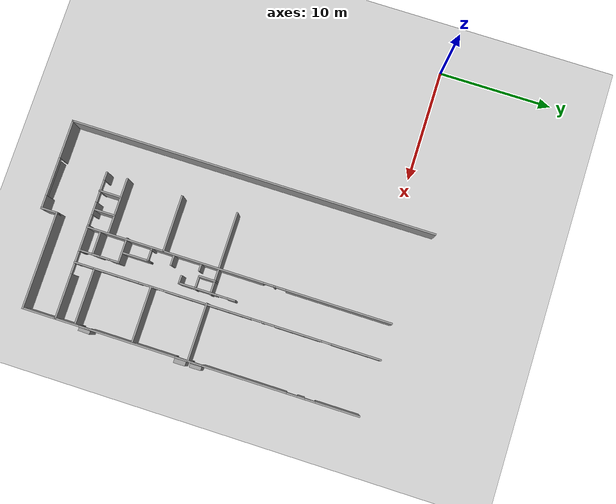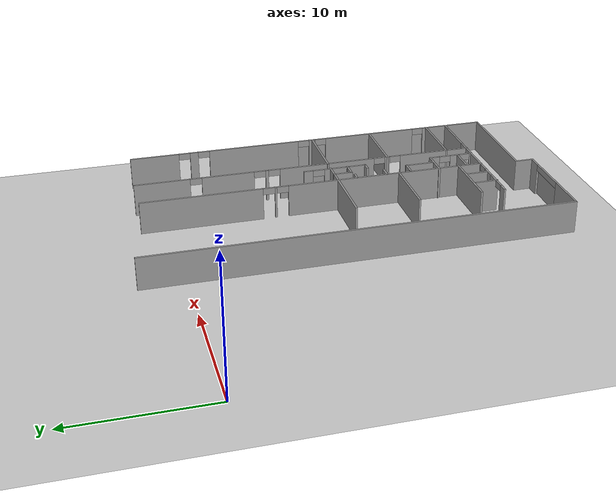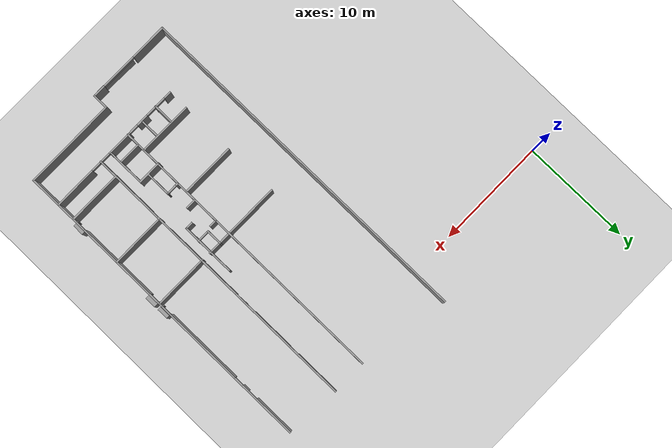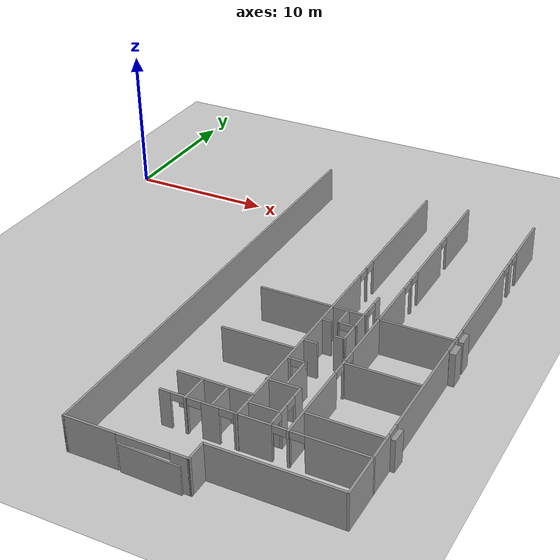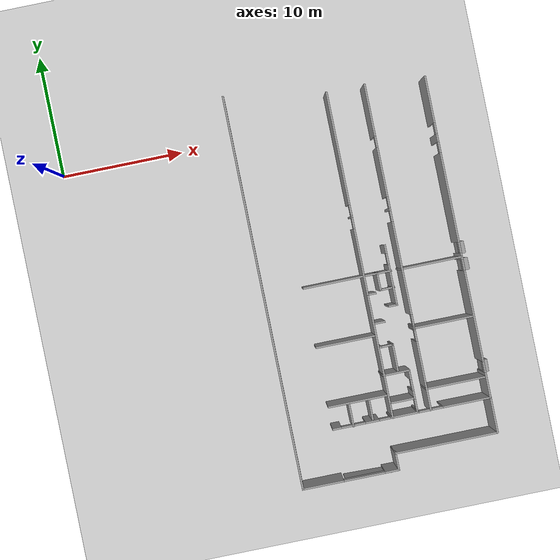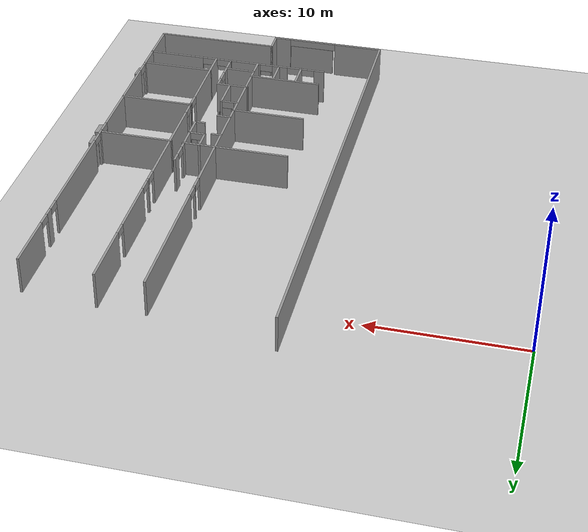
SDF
<sdf version="1.6">
 <world name="default">
  <model name="ground_plane">
   <static>1</static>
   <link name="link">
    <collision name="collision">
     <geometry><plane><normal>0 0 1</normal><size>100 100</size></plane></geometry>
     <surface><friction><ode><mu>100</mu><mu2>50</mu2></ode></friction></surface>
    </collision>
    <visual name="visual">
     <cast_shadows>0</cast_shadows>
     <geometry><plane><normal>0 0 1</normal><size>100 100</size></plane></geometry>
     <material>
      <script><uri>file://media/materials/scripts/gazebo.material</uri><name>Gazebo/Grey</name></script>
     </material>
    </visual>
   </link>
  </model>
  <model name="fin_se1f1.sdf">
   <pose>1.8125 -2.2901 0 0 -0 0</pose>
   <link name="Wall_10">
    <pose>28.6504 -10.5254 0 0 -0 1.5708</pose>
    <visual name="Wall_10_Visual_0">
     <pose>-12.1333 0 1.25 0 -0 0</pose>
     <geometry><box><size>4.98346 0.15 2.5</size></box></geometry>
     <material>
      <script><uri>file://media/materials/scripts/gazebo.material</uri><name>Gazebo/Grey</name></script>
      <ambient>1 1 1 1</ambient>
     </material>
     <meta><layer>0</layer></meta>
    </visual>
    <collision name="Wall_10_Collision_0">
     <geometry><box><size>4.98346 0.15 2.5</size></box></geometry>
     <pose>-12.1333 0 1.25 0 -0 0</pose>
    </collision>
    <visual name="Wall_10_Visual_1">
     <pose>-5.01797 0 1.25 0 -0 0</pose>
     <geometry><box><size>7.44713 0.15 2.5</size></box></geometry>
     <material>
      <script><uri>file://media/materials/scripts/gazebo.material</uri><name>Gazebo/Grey</name></script>
      <ambient>1 1 1 1</ambient>
     </material>
     <meta><layer>0</layer></meta>
    </visual>
    <collision name="Wall_10_Collision_1">
     <geometry><box><size>7.44713 0.15 2.5</size></box></geometry>
     <pose>-5.01797 0 1.25 0 -0 0</pose>
    </collision>
    <visual name="Wall_10_Visual_2">
     <pose>-0.130374 0 1.25 0 -0 0</pose>
     <geometry><box><size>0.528064 0.15 2.5</size></box></geometry>
     <material>
      <script><uri>file://media/materials/scripts/gazebo.material</uri><name>Gazebo/Grey</name></script>
      <ambient>1 1 1 1</ambient>
     </material>
     <meta><layer>0</layer></meta>
    </visual>
    <collision name="Wall_10_Collision_2">
     <geometry><box><size>0.528064 0.15 2.5</size></box></geometry>
     <pose>-0.130374 0 1.25 0 -0 0</pose>
    </collision>
    <visual name="Wall_10_Visual_3">
     <pose>4.68683 0 1.25 0 -0 0</pose>
     <geometry><box><size>7.30634 0.15 2.5</size></box></geometry>
     <material>
      <script><uri>file://media/materials/scripts/gazebo.material</uri><name>Gazebo/Grey</name></script>
      <ambient>1 1 1 1</ambient>
     </material>
     <meta><layer>0</layer></meta>
    </visual>
    <collision name="Wall_10_Collision_3">
     <geometry><box><size>7.30634 0.15 2.5</size></box></geometry>
     <pose>4.68683 0 1.25 0 -0 0</pose>
    </collision>
    <visual name="Wall_10_Visual_4">
     <pose>9.56437 0 1.25 0 -0 0</pose>
     <geometry><box><size>0.648745 0.15 2.5</size></box></geometry>
     <material>
      <script><uri>file://media/materials/scripts/gazebo.material</uri><name>Gazebo/Grey</name></script>
      <ambient>1 1 1 1</ambient>
     </material>
     <meta><layer>0</layer></meta>
    </visual>
    <collision name="Wall_10_Collision_4">
     <geometry><box><size>0.648745 0.15 2.5</size></box></geometry>
     <pose>9.56437 0 1.25 0 -0 0</pose>
    </collision>
    <visual name="Wall_10_Visual_5">
     <pose>12.7069 0 1.25 0 -0 0</pose>
     <geometry><box><size>3.83626 0.15 2.5</size></box></geometry>
     <material>
      <script><uri>file://media/materials/scripts/gazebo.material</uri><name>Gazebo/Grey</name></script>
      <ambient>1 1 1 1</ambient>
     </material>
     <meta><layer>0</layer></meta>
    </visual>
    <collision name="Wall_10_Collision_5">
     <geometry><box><size>3.83626 0.15 2.5</size></box></geometry>
     <pose>12.7069 0 1.25 0 -0 0</pose>
    </collision>
    <visual name="Wall_10_Visual_6">
     <pose>-9.19154 0 2.25 0 -0 0</pose>
     <geometry><box><size>0.9 0.15 0.5</size></box></geometry>
     <material>
      <script><uri>file://media/materials/scripts/gazebo.material</uri><name>Gazebo/Grey</name></script>
      <ambient>1 1 1 1</ambient>
     </material>
     <meta><layer>0</layer></meta>
    </visual>
    <collision name="Wall_10_Collision_6">
     <geometry><box><size>0.9 0.15 0.5</size></box></geometry>
     <pose>-9.19154 0 2.25 0 -0 0</pose>
    </collision>
    <visual name="Wall_10_Visual_7">
     <pose>-0.844406 0 2.25 0 -0 0</pose>
     <geometry><box><size>0.9 0.15 0.5</size></box></geometry>
     <material>
      <script><uri>file://media/materials/scripts/gazebo.material</uri><name>Gazebo/Grey</name></script>
      <ambient>1 1 1 1</ambient>
     </material>
     <meta><layer>0</layer></meta>
    </visual>
    <collision name="Wall_10_Collision_7">
     <geometry><box><size>0.9 0.15 0.5</size></box></geometry>
     <pose>-0.844406 0 2.25 0 -0 0</pose>
    </collision>
    <visual name="Wall_10_Visual_8">
     <pose>0.583658 0 2.25 0 -0 0</pose>
     <geometry><box><size>0.9 0.15 0.5</size></box></geometry>
     <material>
      <script><uri>file://media/materials/scripts/gazebo.material</uri><name>Gazebo/Grey</name></script>
      <ambient>1 1 1 1</ambient>
     </material>
     <meta><layer>0</layer></meta>
    </visual>
    <collision name="Wall_10_Collision_8">
     <geometry><box><size>0.9 0.15 0.5</size></box></geometry>
     <pose>0.583658 0 2.25 0 -0 0</pose>
    </collision>
    <visual name="Wall_10_Visual_9">
     <pose>8.78999 0 2.25 0 -0 0</pose>
     <geometry><box><size>0.9 0.15 0.5</size></box></geometry>
     <material>
      <script><uri>file://media/materials/scripts/gazebo.material</uri><name>Gazebo/Grey</name></script>
      <ambient>1 1 1 1</ambient>
     </material>
     <meta><layer>0</layer></meta>
    </visual>
    <collision name="Wall_10_Collision_9">
     <geometry><box><size>0.9 0.15 0.5</size></box></geometry>
     <pose>8.78999 0 2.25 0 -0 0</pose>
    </collision>
    <visual name="Wall_10_Visual_10">
     <pose>10.3387 0 2.25 0 -0 0</pose>
     <geometry><box><size>0.9 0.15 0.5</size></box></geometry>
     <material>
      <script><uri>file://media/materials/scripts/gazebo.material</uri><name>Gazebo/Grey</name></script>
      <ambient>1 1 1 1</ambient>
     </material>
     <meta><layer>0</layer></meta>
    </visual>
    <collision name="Wall_10_Collision_10">
     <geometry><box><size>0.9 0.15 0.5</size></box></geometry>
     <pose>10.3387 0 2.25 0 -0 0</pose>
    </collision>
   </link>
   <link name="Wall_165">
    <pose>22.2268 -22.214 0 0 -0 0</pose>
    <visual name="Wall_165_Visual_0">
     <pose>-6.13034 0 1.25 0 -0 0</pose>
     <geometry><box><size>0.739323 0.15 2.5</size></box></geometry>
     <material>
      <script><uri>file://media/materials/scripts/gazebo.material</uri><name>Gazebo/Grey</name></script>
      <ambient>1 1 1 1</ambient>
     </material>
     <meta><layer>0</layer></meta>
    </visual>
    <collision name="Wall_165_Collision_0">
     <geometry><box><size>0.739323 0.15 2.5</size></box></geometry>
     <pose>-6.13034 0 1.25 0 -0 0</pose>
    </collision>
    <visual name="Wall_165_Visual_1">
     <pose>-4.77767 0 1.25 0 -0 0</pose>
     <geometry><box><size>0.166019 0.15 2.5</size></box></geometry>
     <material>
      <script><uri>file://media/materials/scripts/gazebo.material</uri><name>Gazebo/Grey</name></script>
      <ambient>1 1 1 1</ambient>
     </material>
     <meta><layer>0</layer></meta>
    </visual>
    <collision name="Wall_165_Collision_1">
     <geometry><box><size>0.166019 0.15 2.5</size></box></geometry>
     <pose>-4.77767 0 1.25 0 -0 0</pose>
    </collision>
    <visual name="Wall_165_Visual_2">
     <pose>-3.22892 0 1.25 0 -0 0</pose>
     <geometry><box><size>1.13147 0.15 2.5</size></box></geometry>
     <material>
      <script><uri>file://media/materials/scripts/gazebo.material</uri><name>Gazebo/Grey</name></script>
      <ambient>1 1 1 1</ambient>
     </material>
     <meta><layer>0</layer></meta>
    </visual>
    <collision name="Wall_165_Collision_2">
     <geometry><box><size>1.13147 0.15 2.5</size></box></geometry>
     <pose>-3.22892 0 1.25 0 -0 0</pose>
    </collision>
    <visual name="Wall_165_Visual_3">
     <pose>-0.594044 0 1.25 0 -0 0</pose>
     <geometry><box><size>2.33828 0.15 2.5</size></box></geometry>
     <material>
      <script><uri>file://media/materials/scripts/gazebo.material</uri><name>Gazebo/Grey</name></script>
      <ambient>1 1 1 1</ambient>
     </material>
     <meta><layer>0</layer></meta>
    </visual>
    <collision name="Wall_165_Collision_3">
     <geometry><box><size>2.33828 0.15 2.5</size></box></geometry>
     <pose>-0.594044 0 1.25 0 -0 0</pose>
    </collision>
    <visual name="Wall_165_Visual_4">
     <pose>1.55811 0 1.25 0 -0 0</pose>
     <geometry><box><size>0.166019 0.15 2.5</size></box></geometry>
     <material>
      <script><uri>file://media/materials/scripts/gazebo.material</uri><name>Gazebo/Grey</name></script>
      <ambient>1 1 1 1</ambient>
     </material>
     <meta><layer>0</layer></meta>
    </visual>
    <collision name="Wall_165_Collision_4">
     <geometry><box><size>0.166019 0.15 2.5</size></box></geometry>
     <pose>1.55811 0 1.25 0 -0 0</pose>
    </collision>
    <visual name="Wall_165_Visual_5">
     <pose>4.52056 0 1.25 0 -0 0</pose>
     <geometry><box><size>3.95888 0.15 2.5</size></box></geometry>
     <material>
      <script><uri>file://media/materials/scripts/gazebo.material</uri><name>Gazebo/Grey</name></script>
      <ambient>1 1 1 1</ambient>
     </material>
     <meta><layer>0</layer></meta>
    </visual>
    <collision name="Wall_165_Collision_5">
     <geometry><box><size>3.95888 0.15 2.5</size></box></geometry>
     <pose>4.52056 0 1.25 0 -0 0</pose>
    </collision>
    <visual name="Wall_165_Visual_6">
     <pose>-5.31068 0 2.25 0 -0 0</pose>
     <geometry><box><size>0.9 0.15 0.5</size></box></geometry>
     <material>
      <script><uri>file://media/materials/scripts/gazebo.material</uri><name>Gazebo/Grey</name></script>
      <ambient>1 1 1 1</ambient>
     </material>
     <meta><layer>0</layer></meta>
    </visual>
    <collision name="Wall_165_Collision_6">
     <geometry><box><size>0.9 0.15 0.5</size></box></geometry>
     <pose>-5.31068 0 2.25 0 -0 0</pose>
    </collision>
    <visual name="Wall_165_Visual_7">
     <pose>-4.24466 0 2.25 0 -0 0</pose>
     <geometry><box><size>0.9 0.15 0.5</size></box></geometry>
     <material>
      <script><uri>file://media/materials/scripts/gazebo.material</uri><name>Gazebo/Grey</name></script>
      <ambient>1 1 1 1</ambient>
     </material>
     <meta><layer>0</layer></meta>
    </visual>
    <collision name="Wall_165_Collision_7">
     <geometry><box><size>0.9 0.15 0.5</size></box></geometry>
     <pose>-4.24466 0 2.25 0 -0 0</pose>
    </collision>
    <visual name="Wall_165_Visual_8">
     <pose>-2.21319 0 2.25 0 -0 0</pose>
     <geometry><box><size>0.9 0.15 0.5</size></box></geometry>
     <material>
      <script><uri>file://media/materials/scripts/gazebo.material</uri><name>Gazebo/Grey</name></script>
      <ambient>1 1 1 1</ambient>
     </material>
     <meta><layer>0</layer></meta>
    </visual>
    <collision name="Wall_165_Collision_8">
     <geometry><box><size>0.9 0.15 0.5</size></box></geometry>
     <pose>-2.21319 0 2.25 0 -0 0</pose>
    </collision>
    <visual name="Wall_165_Visual_9">
     <pose>1.0251 0 2.25 0 -0 0</pose>
     <geometry><box><size>0.9 0.15 0.5</size></box></geometry>
     <material>
      <script><uri>file://media/materials/scripts/gazebo.material</uri><name>Gazebo/Grey</name></script>
      <ambient>1 1 1 1</ambient>
     </material>
     <meta><layer>0</layer></meta>
    </visual>
    <collision name="Wall_165_Collision_9">
     <geometry><box><size>0.9 0.15 0.5</size></box></geometry>
     <pose>1.0251 0 2.25 0 -0 0</pose>
    </collision>
    <visual name="Wall_165_Visual_10">
     <pose>2.09112 0 2.25 0 -0 0</pose>
     <geometry><box><size>0.9 0.15 0.5</size></box></geometry>
     <material>
      <script><uri>file://media/materials/scripts/gazebo.material</uri><name>Gazebo/Grey</name></script>
      <ambient>1 1 1 1</ambient>
     </material>
     <meta><layer>0</layer></meta>
    </visual>
    <collision name="Wall_165_Collision_10">
     <geometry><box><size>0.9 0.15 0.5</size></box></geometry>
     <pose>2.09112 0 2.25 0 -0 0</pose>
    </collision>
   </link>
   <link name="Wall_167">
    <pose>20.659 -8.93568 0 0 0 -1.5708</pose>
    <visual name="Wall_167_Visual_0">
     <pose>-8.74263 0 1.25 0 -0 0</pose>
     <geometry><box><size>9.26475 0.15 2.5</size></box></geometry>
     <material>
      <script><uri>file://media/materials/scripts/gazebo.material</uri><name>Gazebo/Grey</name></script>
      <ambient>1 1 1 1</ambient>
     </material>
     <meta><layer>0</layer></meta>
    </visual>
    <collision name="Wall_167_Collision_0">
     <geometry><box><size>9.26475 0.15 2.5</size></box></geometry>
     <pose>-8.74263 0 1.25 0 -0 0</pose>
    </collision>
    <visual name="Wall_167_Visual_1">
     <pose>-3.1373 0 1.25 0 -0 0</pose>
     <geometry><box><size>0.145906 0.15 2.5</size></box></geometry>
     <material>
      <script><uri>file://media/materials/scripts/gazebo.material</uri><name>Gazebo/Grey</name></script>
      <ambient>1 1 1 1</ambient>
     </material>
     <meta><layer>0</layer></meta>
    </visual>
    <collision name="Wall_167_Collision_1">
     <geometry><box><size>0.145906 0.15 2.5</size></box></geometry>
     <pose>-3.1373 0 1.25 0 -0 0</pose>
    </collision>
    <visual name="Wall_167_Visual_2">
     <pose>5.60533 0 1.25 0 -0 0</pose>
     <geometry><box><size>15.5393 0.15 2.5</size></box></geometry>
     <material>
      <script><uri>file://media/materials/scripts/gazebo.material</uri><name>Gazebo/Grey</name></script>
      <ambient>1 1 1 1</ambient>
     </material>
     <meta><layer>0</layer></meta>
    </visual>
    <collision name="Wall_167_Collision_2">
     <geometry><box><size>15.5393 0.15 2.5</size></box></geometry>
     <pose>5.60533 0 1.25 0 -0 0</pose>
    </collision>
    <visual name="Wall_167_Visual_3">
     <pose>-3.66025 0 2.25 0 -0 0</pose>
     <geometry><box><size>0.9 0.15 0.5</size></box></geometry>
     <material>
      <script><uri>file://media/materials/scripts/gazebo.material</uri><name>Gazebo/Grey</name></script>
      <ambient>1 1 1 1</ambient>
     </material>
     <meta><layer>0</layer></meta>
    </visual>
    <collision name="Wall_167_Collision_3">
     <geometry><box><size>0.9 0.15 0.5</size></box></geometry>
     <pose>-3.66025 0 2.25 0 -0 0</pose>
    </collision>
    <visual name="Wall_167_Visual_4">
     <pose>-2.61435 0 2.25 0 -0 0</pose>
     <geometry><box><size>0.9 0.15 0.5</size></box></geometry>
     <material>
      <script><uri>file://media/materials/scripts/gazebo.material</uri><name>Gazebo/Grey</name></script>
      <ambient>1 1 1 1</ambient>
     </material>
     <meta><layer>0</layer></meta>
    </visual>
    <collision name="Wall_167_Collision_4">
     <geometry><box><size>0.9 0.15 0.5</size></box></geometry>
     <pose>-2.61435 0 2.25 0 -0 0</pose>
    </collision>
   </link>
   <link name="Wall_169">
    <pose>23.7723 -8.93568 0 0 0 -1.5708</pose>
    <visual name="Wall_169_Visual_0">
     <pose>-11.2367 0 1.25 0 -0 0</pose>
     <geometry><box><size>4.27658 0.15 2.5</size></box></geometry>
     <material>
      <script><uri>file://media/materials/scripts/gazebo.material</uri><name>Gazebo/Grey</name></script>
      <ambient>1 1 1 1</ambient>
     </material>
     <meta><layer>0</layer></meta>
    </visual>
    <collision name="Wall_169_Collision_0">
     <geometry><box><size>4.27658 0.15 2.5</size></box></geometry>
     <pose>-11.2367 0 1.25 0 -0 0</pose>
    </collision>
    <visual name="Wall_169_Visual_1">
     <pose>-6.16439 0 1.25 0 -0 0</pose>
     <geometry><box><size>4.06805 0.15 2.5</size></box></geometry>
     <material>
      <script><uri>file://media/materials/scripts/gazebo.material</uri><name>Gazebo/Grey</name></script>
      <ambient>1 1 1 1</ambient>
     </material>
     <meta><layer>0</layer></meta>
    </visual>
    <collision name="Wall_169_Collision_1">
     <geometry><box><size>4.06805 0.15 2.5</size></box></geometry>
     <pose>-6.16439 0 1.25 0 -0 0</pose>
    </collision>
    <visual name="Wall_169_Visual_2">
     <pose>-3.11719 0 1.25 0 -0 0</pose>
     <geometry><box><size>0.22636 0.15 2.5</size></box></geometry>
     <material>
      <script><uri>file://media/materials/scripts/gazebo.material</uri><name>Gazebo/Grey</name></script>
      <ambient>1 1 1 1</ambient>
     </material>
     <meta><layer>0</layer></meta>
    </visual>
    <collision name="Wall_169_Collision_2">
     <geometry><box><size>0.22636 0.15 2.5</size></box></geometry>
     <pose>-3.11719 0 1.25 0 -0 0</pose>
    </collision>
    <visual name="Wall_169_Visual_3">
     <pose>1.70001 0 1.25 0 -0 0</pose>
     <geometry><box><size>7.60804 0.15 2.5</size></box></geometry>
     <material>
      <script><uri>file://media/materials/scripts/gazebo.material</uri><name>Gazebo/Grey</name></script>
      <ambient>1 1 1 1</ambient>
     </material>
     <meta><layer>0</layer></meta>
    </visual>
    <collision name="Wall_169_Collision_3">
     <geometry><box><size>7.60804 0.15 2.5</size></box></geometry>
     <pose>1.70001 0 1.25 0 -0 0</pose>
    </collision>
    <visual name="Wall_169_Visual_4">
     <pose>6.59767 0 1.25 0 -0 0</pose>
     <geometry><box><size>0.387269 0.15 2.5</size></box></geometry>
     <material>
      <script><uri>file://media/materials/scripts/gazebo.material</uri><name>Gazebo/Grey</name></script>
      <ambient>1 1 1 1</ambient>
     </material>
     <meta><layer>0</layer></meta>
    </visual>
    <collision name="Wall_169_Collision_4">
     <geometry><box><size>0.387269 0.15 2.5</size></box></geometry>
     <pose>6.59767 0 1.25 0 -0 0</pose>
    </collision>
    <visual name="Wall_169_Visual_5">
     <pose>10.5332 0 1.25 0 -0 0</pose>
     <geometry><box><size>5.6837 0.15 2.5</size></box></geometry>
     <material>
      <script><uri>file://media/materials/scripts/gazebo.material</uri><name>Gazebo/Grey</name></script>
      <ambient>1 1 1 1</ambient>
     </material>
     <meta><layer>0</layer></meta>
    </visual>
    <collision name="Wall_169_Collision_5">
     <geometry><box><size>5.6837 0.15 2.5</size></box></geometry>
     <pose>10.5332 0 1.25 0 -0 0</pose>
    </collision>
    <visual name="Wall_169_Visual_6">
     <pose>-8.64842 0 2.25 0 -0 0</pose>
     <geometry><box><size>0.9 0.15 0.5</size></box></geometry>
     <material>
      <script><uri>file://media/materials/scripts/gazebo.material</uri><name>Gazebo/Grey</name></script>
      <ambient>1 1 1 1</ambient>
     </material>
     <meta><layer>0</layer></meta>
    </visual>
    <collision name="Wall_169_Collision_6">
     <geometry><box><size>0.9 0.15 0.5</size></box></geometry>
     <pose>-8.64842 0 2.25 0 -0 0</pose>
    </collision>
    <visual name="Wall_169_Visual_7">
     <pose>-3.68037 0 2.25 0 -0 0</pose>
     <geometry><box><size>0.9 0.15 0.5</size></box></geometry>
     <material>
      <script><uri>file://media/materials/scripts/gazebo.material</uri><name>Gazebo/Grey</name></script>
      <ambient>1 1 1 1</ambient>
     </material>
     <meta><layer>0</layer></meta>
    </visual>
    <collision name="Wall_169_Collision_7">
     <geometry><box><size>0.9 0.15 0.5</size></box></geometry>
     <pose>-3.68037 0 2.25 0 -0 0</pose>
    </collision>
    <visual name="Wall_169_Visual_8">
     <pose>-2.55401 0 2.25 0 -0 0</pose>
     <geometry><box><size>0.9 0.15 0.5</size></box></geometry>
     <material>
      <script><uri>file://media/materials/scripts/gazebo.material</uri><name>Gazebo/Grey</name></script>
      <ambient>1 1 1 1</ambient>
     </material>
     <meta><layer>0</layer></meta>
    </visual>
    <collision name="Wall_169_Collision_8">
     <geometry><box><size>0.9 0.15 0.5</size></box></geometry>
     <pose>-2.55401 0 2.25 0 -0 0</pose>
    </collision>
    <visual name="Wall_169_Visual_9">
     <pose>5.95404 0 2.25 0 -0 0</pose>
     <geometry><box><size>0.9 0.15 0.5</size></box></geometry>
     <material>
      <script><uri>file://media/materials/scripts/gazebo.material</uri><name>Gazebo/Grey</name></script>
      <ambient>1 1 1 1</ambient>
     </material>
     <meta><layer>0</layer></meta>
    </visual>
    <collision name="Wall_169_Collision_9">
     <geometry><box><size>0.9 0.15 0.5</size></box></geometry>
     <pose>5.95404 0 2.25 0 -0 0</pose>
    </collision>
    <visual name="Wall_169_Visual_10">
     <pose>7.2413 0 2.25 0 -0 0</pose>
     <geometry><box><size>0.9 0.15 0.5</size></box></geometry>
     <material>
      <script><uri>file://media/materials/scripts/gazebo.material</uri><name>Gazebo/Grey</name></script>
      <ambient>1 1 1 1</ambient>
     </material>
     <meta><layer>0</layer></meta>
    </visual>
    <collision name="Wall_169_Collision_10">
     <geometry><box><size>0.9 0.15 0.5</size></box></geometry>
     <pose>7.2413 0 2.25 0 -0 0</pose>
    </collision>
   </link>
   <link name="Wall_175">
    <collision name="Wall_175_Collision">
     <geometry><box><size>2.25 0.15 2.5</size></box></geometry>
     <pose>0 0 1.25 0 -0 0</pose>
    </collision>
    <visual name="Wall_175_Visual">
     <pose>0 0 1.25 0 -0 0</pose>
     <geometry><box><size>2.25 0.15 2.5</size></box></geometry>
     <material>
      <script><uri>file://media/materials/scripts/gazebo.material</uri><name>Gazebo/Grey</name></script>
      <ambient>1 1 1 1</ambient>
     </material>
     <meta><layer>0</layer></meta>
    </visual>
    <pose>21.6382 -18.7732 0 0 -0 0</pose>
   </link>
   <link name="Wall_176">
    <pose>22.6882 -20.4482 0 0 0 -1.5708</pose>
    <visual name="Wall_176_Visual_0">
     <pose>-1.33489 0 1.25 0 -0 0</pose>
     <geometry><box><size>0.830212 0.15 2.5</size></box></geometry>
     <material>
      <script><uri>file://media/materials/scripts/gazebo.material</uri><name>Gazebo/Grey</name></script>
      <ambient>1 1 1 1</ambient>
     </material>
     <meta><layer>0</layer></meta>
    </visual>
    <collision name="Wall_176_Collision_0">
     <geometry><box><size>0.830212 0.15 2.5</size></box></geometry>
     <pose>-1.33489 0 1.25 0 -0 0</pose>
    </collision>
    <visual name="Wall_176_Visual_1">
     <pose>0.324698 0 1.25 0 -0 0</pose>
     <geometry><box><size>0.688972 0.15 2.5</size></box></geometry>
     <material>
      <script><uri>file://media/materials/scripts/gazebo.material</uri><name>Gazebo/Grey</name></script>
      <ambient>1 1 1 1</ambient>
     </material>
     <meta><layer>0</layer></meta>
    </visual>
    <collision name="Wall_176_Collision_1">
     <geometry><box><size>0.688972 0.15 2.5</size></box></geometry>
     <pose>0.324698 0 1.25 0 -0 0</pose>
    </collision>
    <visual name="Wall_176_Visual_2">
     <pose>1.65959 0 1.25 0 -0 0</pose>
     <geometry><box><size>0.180816 0.15 2.5</size></box></geometry>
     <material>
      <script><uri>file://media/materials/scripts/gazebo.material</uri><name>Gazebo/Grey</name></script>
      <ambient>1 1 1 1</ambient>
     </material>
     <meta><layer>0</layer></meta>
    </visual>
    <collision name="Wall_176_Collision_2">
     <geometry><box><size>0.180816 0.15 2.5</size></box></geometry>
     <pose>1.65959 0 1.25 0 -0 0</pose>
    </collision>
    <visual name="Wall_176_Visual_3">
     <pose>-0.469788 0 2.25 0 -0 0</pose>
     <geometry><box><size>0.9 0.15 0.5</size></box></geometry>
     <material>
      <script><uri>file://media/materials/scripts/gazebo.material</uri><name>Gazebo/Grey</name></script>
      <ambient>1 1 1 1</ambient>
     </material>
     <meta><layer>0</layer></meta>
    </visual>
    <collision name="Wall_176_Collision_3">
     <geometry><box><size>0.9 0.15 0.5</size></box></geometry>
     <pose>-0.469788 0 2.25 0 -0 0</pose>
    </collision>
    <visual name="Wall_176_Visual_4">
     <pose>1.11918 0 2.25 0 -0 0</pose>
     <geometry><box><size>0.9 0.15 0.5</size></box></geometry>
     <material>
      <script><uri>file://media/materials/scripts/gazebo.material</uri><name>Gazebo/Grey</name></script>
      <ambient>1 1 1 1</ambient>
     </material>
     <meta><layer>0</layer></meta>
    </visual>
    <collision name="Wall_176_Collision_4">
     <geometry><box><size>0.9 0.15 0.5</size></box></geometry>
     <pose>1.11918 0 2.25 0 -0 0</pose>
    </collision>
   </link>
   <link name="Wall_202">
    <pose>22.786 -11.0033 0 0 0 -1.5708</pose>
    <visual name="Wall_202_Visual_0">
     <pose>-2.13652 0 1.25 0 -0 0</pose>
     <geometry><box><size>0.72696 0.15 2.5</size></box></geometry>
     <material>
      <script><uri>file://media/materials/scripts/gazebo.material</uri><name>Gazebo/Grey</name></script>
      <ambient>1 1 1 1</ambient>
     </material>
     <meta><layer>0</layer></meta>
    </visual>
    <collision name="Wall_202_Collision_0">
     <geometry><box><size>0.72696 0.15 2.5</size></box></geometry>
     <pose>-2.13652 0 1.25 0 -0 0</pose>
    </collision>
    <visual name="Wall_202_Visual_1">
     <pose>0.81348 0 1.25 0 -0 0</pose>
     <geometry><box><size>3.37304 0.15 2.5</size></box></geometry>
     <material>
      <script><uri>file://media/materials/scripts/gazebo.material</uri><name>Gazebo/Grey</name></script>
      <ambient>1 1 1 1</ambient>
     </material>
     <meta><layer>0</layer></meta>
    </visual>
    <collision name="Wall_202_Collision_1">
     <geometry><box><size>3.37304 0.15 2.5</size></box></geometry>
     <pose>0.81348 0 1.25 0 -0 0</pose>
    </collision>
    <visual name="Wall_202_Visual_2">
     <pose>-1.32304 0 2.25 0 -0 0</pose>
     <geometry><box><size>0.9 0.15 0.5</size></box></geometry>
     <material>
      <script><uri>file://media/materials/scripts/gazebo.material</uri><name>Gazebo/Grey</name></script>
      <ambient>1 1 1 1</ambient>
     </material>
     <meta><layer>0</layer></meta>
    </visual>
    <collision name="Wall_202_Collision_2">
     <geometry><box><size>0.9 0.15 0.5</size></box></geometry>
     <pose>-1.32304 0 2.25 0 -0 0</pose>
    </collision>
   </link>
   <link name="Wall_203">
    <collision name="Wall_203_Collision">
     <geometry><box><size>0.75 0.15 2.5</size></box></geometry>
     <pose>0 0 1.25 0 -0 0</pose>
    </collision>
    <visual name="Wall_203_Visual">
     <pose>0 0 1.25 0 -0 0</pose>
     <geometry><box><size>0.75 0.15 2.5</size></box></geometry>
     <material>
      <script><uri>file://media/materials/scripts/gazebo.material</uri><name>Gazebo/Grey</name></script>
      <ambient>1 1 1 1</ambient>
     </material>
     <meta><layer>0</layer></meta>
    </visual>
    <pose>22.486 -13.4283 0 0 -0 3.14159</pose>
   </link>
   <link name="Wall_205">
    <collision name="Wall_205_Collision">
     <geometry><box><size>0.75 0.15 2.5</size></box></geometry>
     <pose>0 0 1.25 0 -0 0</pose>
    </collision>
    <visual name="Wall_205_Visual">
     <pose>0 0 1.25 0 -0 0</pose>
     <geometry><box><size>0.75 0.15 2.5</size></box></geometry>
     <material>
      <script><uri>file://media/materials/scripts/gazebo.material</uri><name>Gazebo/Grey</name></script>
      <ambient>1 1 1 1</ambient>
     </material>
     <meta><layer>0</layer></meta>
    </visual>
    <pose>20.9784 -12.1724 0 0 -0 0</pose>
   </link>
   <link name="Wall_207">
    <collision name="Wall_207_Collision">
     <geometry><box><size>1.5 0.15 2.5</size></box></geometry>
     <pose>0 0 1.25 0 -0 0</pose>
    </collision>
    <visual name="Wall_207_Visual">
     <pose>0 0 1.25 0 -0 0</pose>
     <geometry><box><size>1.5 0.15 2.5</size></box></geometry>
     <material>
      <script><uri>file://media/materials/scripts/gazebo.material</uri><name>Gazebo/Grey</name></script>
      <ambient>1 1 1 1</ambient>
     </material>
     <meta><layer>0</layer></meta>
    </visual>
    <pose>21.7337 -11.3347 0 0 0 -1.5708</pose>
   </link>
   <link name="Wall_208">
    <pose>22.2837 -12.0097 0 0 -0 0</pose>
    <visual name="Wall_208_Visual_0">
     <pose>-0.556272 0 1.25 0 -0 0</pose>
     <geometry><box><size>0.137456 0.15 2.5</size></box></geometry>
     <material>
      <script><uri>file://media/materials/scripts/gazebo.material</uri><name>Gazebo/Grey</name></script>
      <ambient>1 1 1 1</ambient>
     </material>
     <meta><layer>0</layer></meta>
    </visual>
    <collision name="Wall_208_Collision_0">
     <geometry><box><size>0.137456 0.15 2.5</size></box></geometry>
     <pose>-0.556272 0 1.25 0 -0 0</pose>
    </collision>
    <visual name="Wall_208_Visual_1">
     <pose>0.518728 0 1.25 0 -0 0</pose>
     <geometry><box><size>0.212544 0.15 2.5</size></box></geometry>
     <material>
      <script><uri>file://media/materials/scripts/gazebo.material</uri><name>Gazebo/Grey</name></script>
      <ambient>1 1 1 1</ambient>
     </material>
     <meta><layer>0</layer></meta>
    </visual>
    <collision name="Wall_208_Collision_1">
     <geometry><box><size>0.212544 0.15 2.5</size></box></geometry>
     <pose>0.518728 0 1.25 0 -0 0</pose>
    </collision>
    <visual name="Wall_208_Visual_2">
     <pose>-0.037544 0 2.25 0 -0 0</pose>
     <geometry><box><size>0.9 0.15 0.5</size></box></geometry>
     <material>
      <script><uri>file://media/materials/scripts/gazebo.material</uri><name>Gazebo/Grey</name></script>
      <ambient>1 1 1 1</ambient>
     </material>
     <meta><layer>0</layer></meta>
    </visual>
    <collision name="Wall_208_Collision_2">
     <geometry><box><size>0.9 0.15 0.5</size></box></geometry>
     <pose>-0.037544 0 2.25 0 -0 0</pose>
    </collision>
   </link>
   <link name="Wall_210">
    <collision name="Wall_210_Collision">
     <geometry><box><size>7.25 0.15 2.5</size></box></geometry>
     <pose>0 0 1.25 0 -0 0</pose>
    </collision>
    <visual name="Wall_210_Visual">
     <pose>0 0 1.25 0 -0 0</pose>
     <geometry><box><size>7.25 0.15 2.5</size></box></geometry>
     <material>
      <script><uri>file://media/materials/scripts/gazebo.material</uri><name>Gazebo/Grey</name></script>
      <ambient>1 1 1 1</ambient>
     </material>
     <meta><layer>0</layer></meta>
    </visual>
    <pose>19.3094 -10.6597 0 0 -0 3.14159</pose>
   </link>
   <link name="Wall_212">
    <collision name="Wall_212_Collision">
     <geometry><box><size>1 0.15 2.5</size></box></geometry>
     <pose>0 0 1.25 0 -0 0</pose>
    </collision>
    <visual name="Wall_212_Visual">
     <pose>0 0 1.25 0 -0 0</pose>
     <geometry><box><size>1 0.15 2.5</size></box></geometry>
     <material>
      <script><uri>file://media/materials/scripts/gazebo.material</uri><name>Gazebo/Grey</name></script>
      <ambient>1 1 1 1</ambient>
     </material>
     <meta><layer>0</layer></meta>
    </visual>
    <pose>21.0991 -14.557 0 0 -0 0</pose>
   </link>
   <link name="Wall_214">
    <collision name="Wall_214_Collision">
     <geometry><box><size>5 0.15 2.5</size></box></geometry>
     <pose>0 0 1.25 0 -0 0</pose>
    </collision>
    <visual name="Wall_214_Visual">
     <pose>0 0 1.25 0 -0 0</pose>
     <geometry><box><size>5 0.15 2.5</size></box></geometry>
     <material>
      <script><uri>file://media/materials/scripts/gazebo.material</uri><name>Gazebo/Grey</name></script>
      <ambient>1 1 1 1</ambient>
     </material>
     <meta><layer>0</layer></meta>
    </visual>
    <pose>26.1362 -10.6951 0 0 -0 0</pose>
   </link>
   <link name="Wall_216">
    <collision name="Wall_216_Collision">
     <geometry><box><size>5 0.15 2.5</size></box></geometry>
     <pose>0 0 1.25 0 -0 0</pose>
    </collision>
    <visual name="Wall_216_Visual">
     <pose>0 0 1.25 0 -0 0</pose>
     <geometry><box><size>5 0.15 2.5</size></box></geometry>
     <material>
      <script><uri>file://media/materials/scripts/gazebo.material</uri><name>Gazebo/Grey</name></script>
      <ambient>1 1 1 1</ambient>
     </material>
     <meta><layer>0</layer></meta>
    </visual>
    <pose>26.1966 -15.5425 0 0 -0 0</pose>
   </link>
   <link name="Wall_218">
    <collision name="Wall_218_Collision">
     <geometry><box><size>5 0.15 2.5</size></box></geometry>
     <pose>0 0 1.25 0 -0 0</pose>
    </collision>
    <visual name="Wall_218_Visual">
     <pose>0 0 1.25 0 -0 0</pose>
     <geometry><box><size>5 0.15 2.5</size></box></geometry>
     <material>
      <script><uri>file://media/materials/scripts/gazebo.material</uri><name>Gazebo/Grey</name></script>
      <ambient>1 1 1 1</ambient>
     </material>
     <meta><layer>0</layer></meta>
    </visual>
    <pose>18.2316 -15.5224 0 0 -0 0</pose>
   </link>
   <link name="Wall_220">
    <collision name="Wall_220_Collision">
     <geometry><box><size>5 0.15 2.5</size></box></geometry>
     <pose>0 0 1.25 0 -0 0</pose>
    </collision>
    <visual name="Wall_220_Visual">
     <pose>0 0 1.25 0 -0 0</pose>
     <geometry><box><size>5 0.15 2.5</size></box></geometry>
     <material>
      <script><uri>file://media/materials/scripts/gazebo.material</uri><name>Gazebo/Grey</name></script>
      <ambient>1 1 1 1</ambient>
     </material>
     <meta><layer>0</layer></meta>
    </visual>
    <pose>18.2316 -20.3899 0 0 -0 0</pose>
   </link>
   <link name="Wall_222">
    <pose>21.2643 -16.508 0 0 -0 0</pose>
    <visual name="Wall_222_Visual_0">
     <pose>-0.48906 0 1.25 0 -0 0</pose>
     <geometry><box><size>0.27188 0.15 2.5</size></box></geometry>
     <material>
      <script><uri>file://media/materials/scripts/gazebo.material</uri><name>Gazebo/Grey</name></script>
      <ambient>1 1 1 1</ambient>
     </material>
     <meta><layer>0</layer></meta>
    </visual>
    <collision name="Wall_222_Collision_0">
     <geometry><box><size>0.27188 0.15 2.5</size></box></geometry>
     <pose>-0.48906 0 1.25 0 -0 0</pose>
    </collision>
    <visual name="Wall_222_Visual_1">
     <pose>0.58594 0 1.25 0 -0 0</pose>
     <geometry><box><size>0.07812 0.15 2.5</size></box></geometry>
     <material>
      <script><uri>file://media/materials/scripts/gazebo.material</uri><name>Gazebo/Grey</name></script>
      <ambient>1 1 1 1</ambient>
     </material>
     <meta><layer>0</layer></meta>
    </visual>
    <collision name="Wall_222_Collision_1">
     <geometry><box><size>0.07812 0.15 2.5</size></box></geometry>
     <pose>0.58594 0 1.25 0 -0 0</pose>
    </collision>
    <visual name="Wall_222_Visual_2">
     <pose>0.09688 0 2.25 0 -0 0</pose>
     <geometry><box><size>0.9 0.15 0.5</size></box></geometry>
     <material>
      <script><uri>file://media/materials/scripts/gazebo.material</uri><name>Gazebo/Grey</name></script>
      <ambient>1 1 1 1</ambient>
     </material>
     <meta><layer>0</layer></meta>
    </visual>
    <collision name="Wall_222_Collision_2">
     <geometry><box><size>0.9 0.15 0.5</size></box></geometry>
     <pose>0.09688 0 2.25 0 -0 0</pose>
    </collision>
   </link>
   <link name="Wall_223">
    <collision name="Wall_223_Collision">
     <geometry><box><size>2.25 0.15 2.5</size></box></geometry>
     <pose>0 0 1.25 0 -0 0</pose>
    </collision>
    <visual name="Wall_223_Visual">
     <pose>0 0 1.25 0 -0 0</pose>
     <geometry><box><size>2.25 0.15 2.5</size></box></geometry>
     <material>
      <script><uri>file://media/materials/scripts/gazebo.material</uri><name>Gazebo/Grey</name></script>
      <ambient>1 1 1 1</ambient>
     </material>
     <meta><layer>0</layer></meta>
    </visual>
    <pose>21.8143 -17.558 0 0 0 -1.5708</pose>
   </link>
   <link name="Wall_225">
    <collision name="Wall_225_Collision">
     <geometry><box><size>2 0.15 2.5</size></box></geometry>
     <pose>0 0 1.25 0 -0 0</pose>
    </collision>
    <visual name="Wall_225_Visual">
     <pose>0 0 1.25 0 -0 0</pose>
     <geometry><box><size>2 0.15 2.5</size></box></geometry>
     <material>
      <script><uri>file://media/materials/scripts/gazebo.material</uri><name>Gazebo/Grey</name></script>
      <ambient>1 1 1 1</ambient>
     </material>
     <meta><layer>0</layer></meta>
    </visual>
    <pose>21.6192 -21.0536 0 0 -0 0</pose>
   </link>
   <link name="Wall_227">
    <collision name="Wall_227_Collision">
     <geometry><box><size>2 0.15 2.5</size></box></geometry>
     <pose>0 0 1.25 0 -0 0</pose>
    </collision>
    <visual name="Wall_227_Visual">
     <pose>0 0 1.25 0 -0 0</pose>
     <geometry><box><size>2 0.15 2.5</size></box></geometry>
     <material>
      <script><uri>file://media/materials/scripts/gazebo.material</uri><name>Gazebo/Grey</name></script>
      <ambient>1 1 1 1</ambient>
     </material>
     <meta><layer>0</layer></meta>
    </visual>
    <pose>17.4358 -21.335 0 0 0 -1.5708</pose>
   </link>
   <link name="Wall_229">
    <collision name="Wall_229_Collision">
     <geometry><box><size>1.75 0.15 2.5</size></box></geometry>
     <pose>0 0 1.25 0 -0 0</pose>
    </collision>
    <visual name="Wall_229_Visual">
     <pose>0 0 1.25 0 -0 0</pose>
     <geometry><box><size>1.75 0.15 2.5</size></box></geometry>
     <material>
      <script><uri>file://media/materials/scripts/gazebo.material</uri><name>Gazebo/Grey</name></script>
      <ambient>1 1 1 1</ambient>
     </material>
     <meta><layer>0</layer></meta>
    </visual>
    <pose>19.065 -21.2502 0 0 0 -1.5708</pose>
   </link>
   <link name="Wall_231">
    <collision name="Wall_231_Collision">
     <geometry><box><size>5 0.15 2.5</size></box></geometry>
     <pose>0 0 1.25 0 -0 0</pose>
    </collision>
    <visual name="Wall_231_Visual">
     <pose>0 0 1.25 0 -0 0</pose>
     <geometry><box><size>5 0.15 2.5</size></box></geometry>
     <material>
      <script><uri>file://media/materials/scripts/gazebo.material</uri><name>Gazebo/Grey</name></script>
      <ambient>1 1 1 1</ambient>
     </material>
     <meta><layer>0</layer></meta>
    </visual>
    <pose>26.1966 -20.5106 0 0 -0 0</pose>
   </link>
   <link name="Wall_6">
    <collision name="Wall_6_Collision">
     <geometry><box><size>32.25 0.15 2.5</size></box></geometry>
     <pose>0 0 1.25 0 -0 0</pose>
    </collision>
    <visual name="Wall_6_Visual">
     <pose>0 0 1.25 0 -0 0</pose>
     <geometry><box><size>32.25 0.15 2.5</size></box></geometry>
     <material>
      <script><uri>file://media/materials/scripts/gazebo.material</uri><name>Gazebo/Grey</name></script>
      <ambient>1 1 1 1</ambient>
     </material>
     <meta><layer>0</layer></meta>
    </visual>
    <pose>12.4504 -10.3754 0 0 0 -1.5708</pose>
   </link>
   <link name="Wall_7">
    <pose>16.3754 -26.4254 0 0 -0 0</pose>
    <visual name="Wall_7_Visual_0">
     <pose>-2.28505 0 1.25 0 -0 0</pose>
     <geometry><box><size>3.4299 0.15 2.5</size></box></geometry>
     <material>
      <script><uri>file://media/materials/scripts/gazebo.material</uri><name>Gazebo/Grey</name></script>
      <ambient>1 1 1 1</ambient>
     </material>
     <meta><layer>0</layer></meta>
    </visual>
    <collision name="Wall_7_Collision_0">
     <geometry><box><size>3.4299 0.15 2.5</size></box></geometry>
     <pose>-2.28505 0 1.25 0 -0 0</pose>
    </collision>
    <visual name="Wall_7_Visual_1">
     <pose>3.39784 0 1.25 0 -0 0</pose>
     <geometry><box><size>1.20433 0.15 2.5</size></box></geometry>
     <material>
      <script><uri>file://media/materials/scripts/gazebo.material</uri><name>Gazebo/Grey</name></script>
      <ambient>1 1 1 1</ambient>
     </material>
     <meta><layer>0</layer></meta>
    </visual>
    <collision name="Wall_7_Collision_1">
     <geometry><box><size>1.20433 0.15 2.5</size></box></geometry>
     <pose>3.39784 0 1.25 0 -0 0</pose>
    </collision>
    <visual name="Wall_7_Visual_2">
     <pose>1.11279 0 2.25 0 -0 0</pose>
     <geometry><box><size>3.36577 0.15 0.5</size></box></geometry>
     <material>
      <script><uri>file://media/materials/scripts/gazebo.material</uri><name>Gazebo/Grey</name></script>
      <ambient>1 1 1 1</ambient>
     </material>
     <meta><layer>0</layer></meta>
    </visual>
    <collision name="Wall_7_Collision_2">
     <geometry><box><size>3.36577 0.15 0.5</size></box></geometry>
     <pose>1.11279 0 2.25 0 -0 0</pose>
    </collision>
   </link>
   <link name="Wall_8">
    <collision name="Wall_8_Collision">
     <geometry><box><size>1.5 0.15 2.5</size></box></geometry>
     <pose>0 0 1.25 0 -0 0</pose>
    </collision>
    <visual name="Wall_8_Visual">
     <pose>0 0 1.25 0 -0 0</pose>
     <geometry><box><size>1.5 0.15 2.5</size></box></geometry>
     <material>
      <script><uri>file://media/materials/scripts/gazebo.material</uri><name>Gazebo/Grey</name></script>
      <ambient>1 1 1 1</ambient>
     </material>
     <meta><layer>0</layer></meta>
    </visual>
    <pose>20.3004 -25.7504 0 0 -0 1.5708</pose>
   </link>
   <link name="Wall_9">
    <collision name="Wall_9_Collision">
     <geometry><box><size>8.5 0.15 2.5</size></box></geometry>
     <pose>0 0 1.25 0 -0 0</pose>
    </collision>
    <visual name="Wall_9_Visual">
     <pose>0 0 1.25 0 -0 0</pose>
     <geometry><box><size>8.5 0.15 2.5</size></box></geometry>
     <material>
      <script><uri>file://media/materials/scripts/gazebo.material</uri><name>Gazebo/Grey</name></script>
      <ambient>1 1 1 1</ambient>
     </material>
     <meta><layer>0</layer></meta>
    </visual>
    <pose>24.4754 -25.0754 0 0 -0 0</pose>
   </link>
   <static>1</static>
  </model>
  <model name="unit_box_1">
   <pose>19.7283 -28.8571 0.959428 4e-06 -0.000157 -0.025384</pose>
   <link name="link">
    <inertial>
     <mass>1</mass>
     <inertia>
      <ixx>0.166667</ixx>
      <ixy>0</ixy>
      <ixz>0</ixz>
      <iyy>0.166667</iyy>
      <iyz>0</iyz>
      <izz>0.166667</izz>
     </inertia>
    </inertial>
    <collision name="collision"><geometry><box><size>3.91864 0.104562 1.91947</size></box></geometry></collision>
    <visual name="visual">
     <geometry><box><size>3.91864 0.104562 1.91947</size></box></geometry>
     <material>
      <script><name>Gazebo/Grey</name><uri>file://media/materials/scripts/gazebo.material</uri></script>
     </material>
    </visual>
   </link>
  </model>
  <model name="unit_box_12">
   <pose>30.7354 -12.2546 1.12915 0 -0 0.007031</pose>
   <link name="link">
    <inertial>
     <mass>1</mass>
     <inertia>
      <ixx>0.166667</ixx>
      <ixy>0</ixy>
      <ixz>0</ixz>
      <iyy>0.166667</iyy>
      <iyz>0</iyz>
      <izz>0.166667</izz>
     </inertia>
    </inertial>
    <collision name="collision"><geometry><box><size>0.321655 1 2.2583</size></box></geometry></collision>
    <visual name="visual">
     <geometry><box><size>0.321655 1 2.2583</size></box></geometry>
     <material>
      <script><name>Gazebo/Grey</name><uri>file://media/materials/scripts/gazebo.material</uri></script>
     </material>
    </visual>
   </link>
  </model>
  <model name="unit_box_13">
   <pose>30.7397 -13.6052 1.15011 2e-06 -0 0.00973</pose>
   <link name="link">
    <inertial>
     <mass>1</mass>
     <inertia>
      <ixx>0.166667</ixx>
      <ixy>0</ixy>
      <ixz>0</ixz>
      <iyy>0.166667</iyy>
      <iyz>0</iyz>
      <izz>0.166667</izz>
     </inertia>
    </inertial>
    <collision name="collision"><geometry><box><size>0.393579 1 2.30021</size></box></geometry></collision>
    <visual name="visual">
     <geometry><box><size>0.393579 1 2.30021</size></box></geometry>
     <material>
      <script><name>Gazebo/Grey</name><uri>file://media/materials/scripts/gazebo.material</uri></script>
     </material>
    </visual>
   </link>
  </model>
  <model name="unit_box_14">
   <pose>30.6905 -21.9617 1.09917 -0 0.012955 -0.032254</pose>
   <link name="link">
    <inertial>
     <mass>1</mass>
     <inertia>
      <ixx>0.166667</ixx>
      <ixy>0</ixy>
      <ixz>0</ixz>
      <iyy>0.166667</iyy>
      <iyz>0</iyz>
      <izz>0.166667</izz>
     </inertia>
    </inertial>
    <collision name="collision"><geometry><box><size>0.296412 1 2.19469</size></box></geometry></collision>
    <visual name="visual">
     <geometry><box><size>0.296412 1 2.19469</size></box></geometry>
     <material>
      <script><name>Gazebo/Grey</name><uri>file://media/materials/scripts/gazebo.material</uri></script>
     </material>
    </visual>
   </link>
  </model>
 </world>
</sdf>
